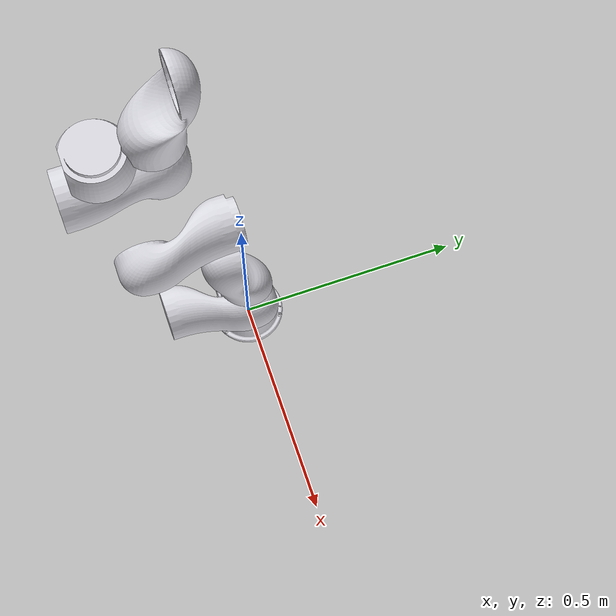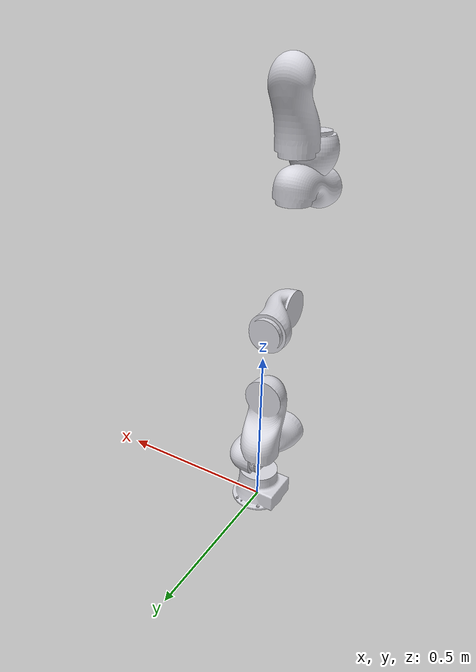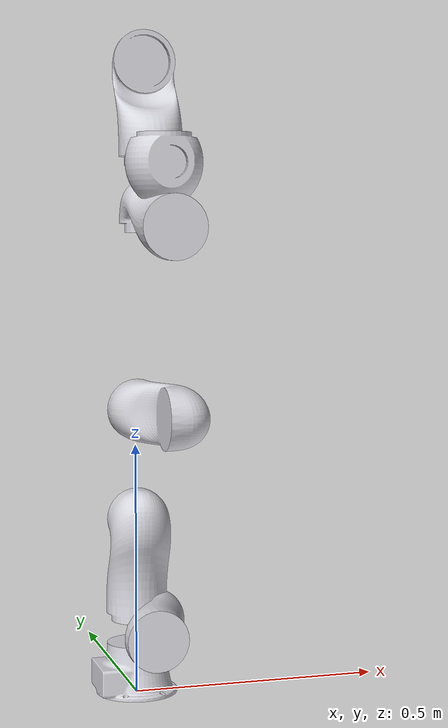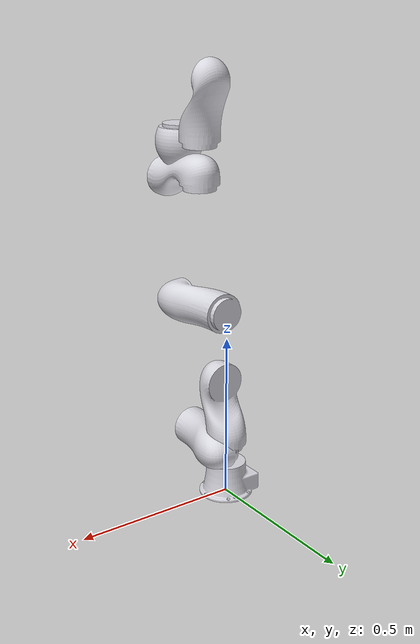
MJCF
<mujoco model="cr5">
  <compiler angle="radian" eulerseq="XYZ" />

  <include file="default.xml" />
  <include file="asset.xml" />

  <worldbody>
    <body name="base_link">
      <inertial pos="-7.944817e-06 0.003129798 0.028930534" mass="0.921803442"
        fullinertia="0.001552184 0.001346829 0.002252597 4.579729e-08 -1.889855e-07 -1.490499e-06" />
      <geom class="cr5_visual" mesh="base_link_visual" />
      <geom class="cr5_collision" mesh="base_link_collision" />
      <body name="link_1" pos="0 0 0.147" euler="0 0 0">
        <joint name="joint_1" type="hinge" axis="0 0 1" range="-6.2832 6.2832" armature="0.1"
          damping="5.0" frictionloss="1.0" />
        <inertial pos="1.732462e-07 -0.003254572 -0.007633470" mass="1.613090768"
          fullinertia="0.005467836 0.005250346 0.003409568 1.551051e-09 -7.416569e-08 -9.788468e-05" />
        <geom class="cr5_visual" mesh="link_1_visual" />
        <geom class="cr5_collision" mesh="link_1_collision" />
        <body name="link_2" pos="0 0 0" euler="1.5708 1.5708 0">
          <joint name="joint_2" type="hinge" axis="0 0 1" range="-6.2832 6.2832" armature="0.1"
            damping="5.0" frictionloss="1.0" />
          <inertial pos="-0.213514541 -0.000174146 0.142532293" mass="5.525027664"
            fullinertia="0.013539010 0.175351191 0.171155666 -0.000132792 1.089426e-06 -1.557619e-07" />
          <geom class="cr5_visual" mesh="link_2_visual" />
          <geom class="cr5_collision" mesh="link_2_collision" />
          <body name="link_3" pos="-0.427 -0.00034866 0" euler="0 0 0">
            <joint name="joint_3" type="hinge" axis="0 0 1" range="-2.792 2.792" armature="0.1"
              damping="5.0" frictionloss="1.0" />
            <inertial pos="-0.152341668 0.000149359 0.022683148" mass="2.853894211"
              fullinertia="0.004262339 0.065129511 0.064386446 5.976804e-05 0.001453665 -1.398065e-06" />
            <geom class="cr5_visual" mesh="link_3_visual" />
            <geom class="cr5_collision" mesh="link_3_collision" />
            <body name="link_4" pos="-0.357 0.00034866 0.141" euler="0 0 -1.5708">
              <joint name="joint_4" type="hinge" axis="0 0 1" range="-6.2832 6.2832" armature="0.02"
                damping="1.0" frictionloss="0.2" />
              <inertial pos="5.594972e-08 -0.002033705 -0.001553275" mass="0.670967728"
                fullinertia="0.001652150 0.000679018 0.001612073 6.998841e-10 -2.827351e-09 -3.933120e-05" />
              <geom class="cr5_visual" mesh="link_4_visual" />
              <geom class="cr5_collision" mesh="link_4_collision" />
              <body name="link_5" pos="0 -0.116 0" euler="1.5708 0 0">
                <joint name="joint_5" type="hinge" axis="0 0 1" range="-6.2832 6.2832"
                  armature="0.02" damping="1.0" frictionloss="0.2" />
                <inertial pos="1.668393e-08 -0.006125032 -0.001271823" mass="0.741136955"
                  fullinertia="0.002128583 0.000739514 0.002088154 -3.051141e-08 1.845873e-08 5.384795e-05" />
                <geom class="cr5_visual" mesh="link_5_visual" />
                <geom class="cr5_collision" mesh="link_5_collision" />
                <body name="link_6" pos="0 0.105 0" euler="-1.5708 0 0">
                  <joint name="joint_6" type="hinge" axis="0 0 1" range="-6.2832 6.2832"
                    armature="0.02" damping="1.0" frictionloss="0.2" />
                  <inertial pos="4.943970e-11 9.376323e-05 -0.019285436" mass="0.157885370"
                    fullinertia="0.000079401 0.000079169 0.000130860 4.662104e-15 2.944135e-14 -9.613137e-08" />
                  <geom class="cr5_visual" mesh="link_6_visual" />
                  <geom class="cr5_collision" mesh="link_6_collision" />
                  <frame name="tool_mount" pos="0 0 0" euler="0 0 0"></frame>
                </body>
              </body>
            </body>
          </body>
        </body>
      </body>
    </body>
  </worldbody>

  <include file="contact.xml" />
  <include file="actuator.xml" />

</mujoco>

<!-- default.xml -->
<mujoco>
    <default>
        <default class="cr5_visual">
            <geom type="mesh" contype="0" conaffinity="0" group="1" rgba="0.85 0.85 0.88 1" />
        </default>
        <default class="cr5_collision">
            <geom type="mesh" group="3" />
        </default>
    </default>
</mujoco>

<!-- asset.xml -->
<mujoco>
    <asset>
        <mesh name="base_link_visual" file="meshes/visual/base.STL" />
        <mesh name="base_link_collision" file="meshes/collision/base.STL" />
        <mesh name="link_1_visual" file="meshes/visual/link_1.STL" />
        <mesh name="link_1_collision" file="meshes/collision/link_1.STL" />
        <mesh name="link_2_visual" file="meshes/visual/link_2.STL" />
        <mesh name="link_2_collision" file="meshes/collision/link_2.STL" />
        <mesh name="link_3_visual" file="meshes/visual/link_3.STL" />
        <mesh name="link_3_collision" file="meshes/collision/link_3.STL" />
        <mesh name="link_4_visual" file="meshes/visual/link_4.STL" />
        <mesh name="link_4_collision" file="meshes/collision/link_4.STL" />
        <mesh name="link_5_visual" file="meshes/visual/link_5.STL" />
        <mesh name="link_5_collision" file="meshes/collision/link_5.STL" />
        <mesh name="link_6_visual" file="meshes/visual/link_6.STL" />
        <mesh name="link_6_collision" file="meshes/collision/link_6.STL" />
    </asset>
</mujoco>

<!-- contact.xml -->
<mujoco>
    <contact>
        <exclude body1="base_link" body2="link_1" />
        <exclude body1="link_1" body2="link_2" />
        <exclude body1="link_1" body2="link_3" />
        <exclude body1="link_1" body2="link_4" />
        <exclude body1="link_2" body2="link_3" />
        <exclude body1="link_3" body2="link_4" />
        <exclude body1="link_4" body2="link_5" />
        <exclude body1="link_4" body2="link_6" />
        <exclude body1="link_5" body2="link_6" />
    </contact>
</mujoco>

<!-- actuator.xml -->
<mujoco>

    <actuator>
        <position name="joint_1" joint="joint_1" ctrlrange="-6.2832 6.2832" kp="8100" kv="150"
            forcerange="-100.0 100.0" />
        <position name="joint_2" joint="joint_2" ctrlrange="-6.2832 6.2832" kp="8600" kv="150"
            forcerange="-100.0 100.0" />
        <position name="joint_3" joint="joint_3" ctrlrange="-2.792 2.792" kp="8100" kv="150"
            forcerange="-100.0 100.0" />
        <position name="joint_4" joint="joint_4" ctrlrange="-6.2832 6.2832" kp="500" kv="30"
            forcerange="-50.0 50.0" />
        <position name="joint_5" joint="joint_5" ctrlrange="-6.2832 6.2832" kp="500" kv="30"
            forcerange="-50.0 50.0" />
        <position name="joint_6" joint="joint_6" ctrlrange="-6.2832 6.2832" kp="500" kv="30"
            forcerange="-50.0 50.0" />
    </actuator>
</mujoco>
